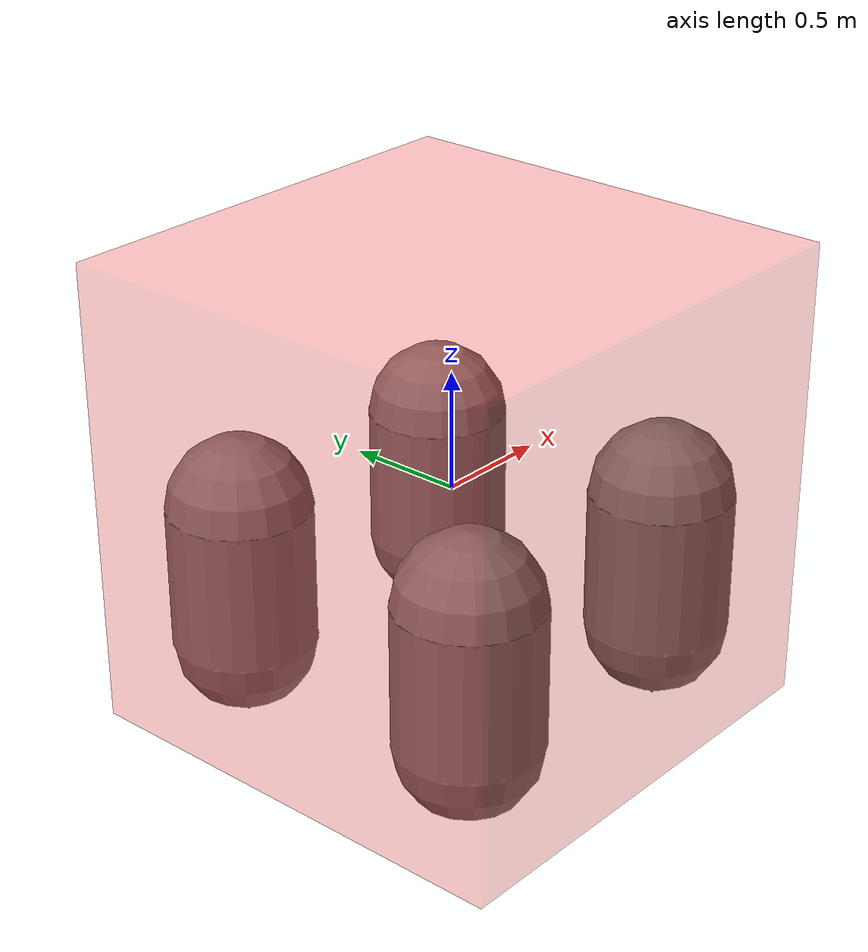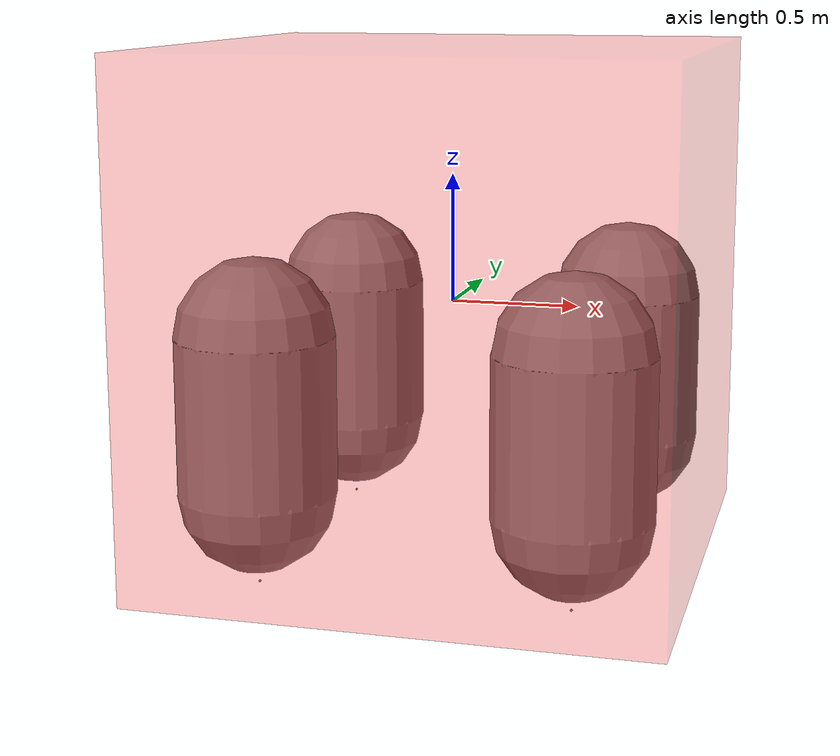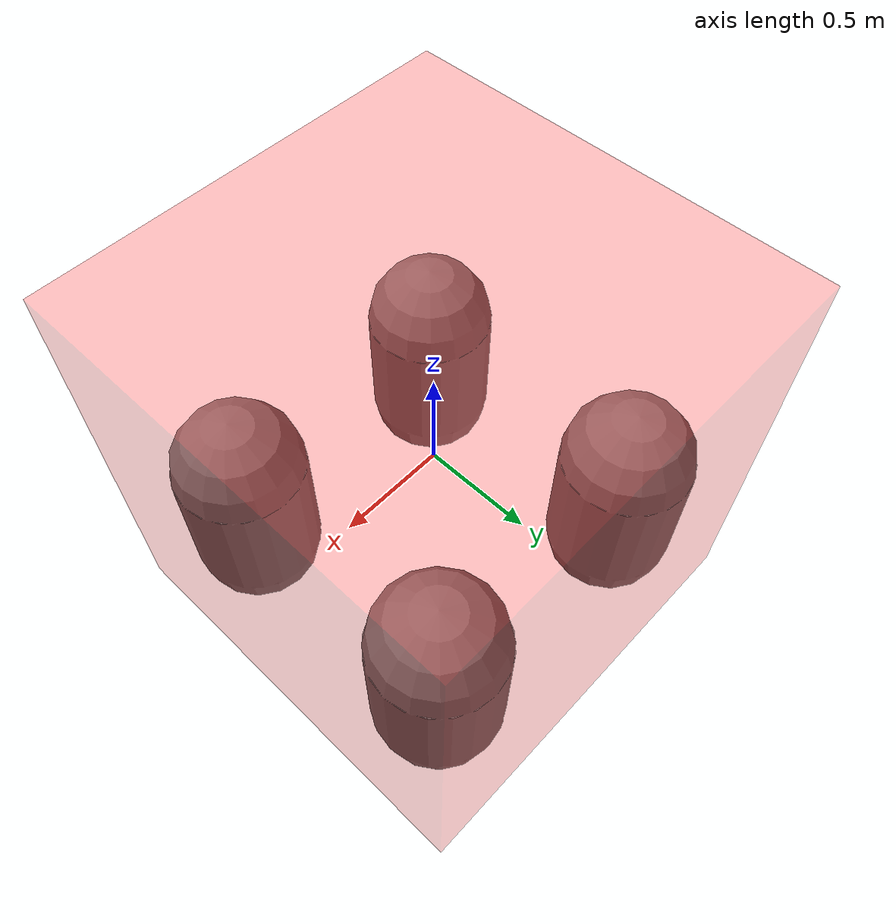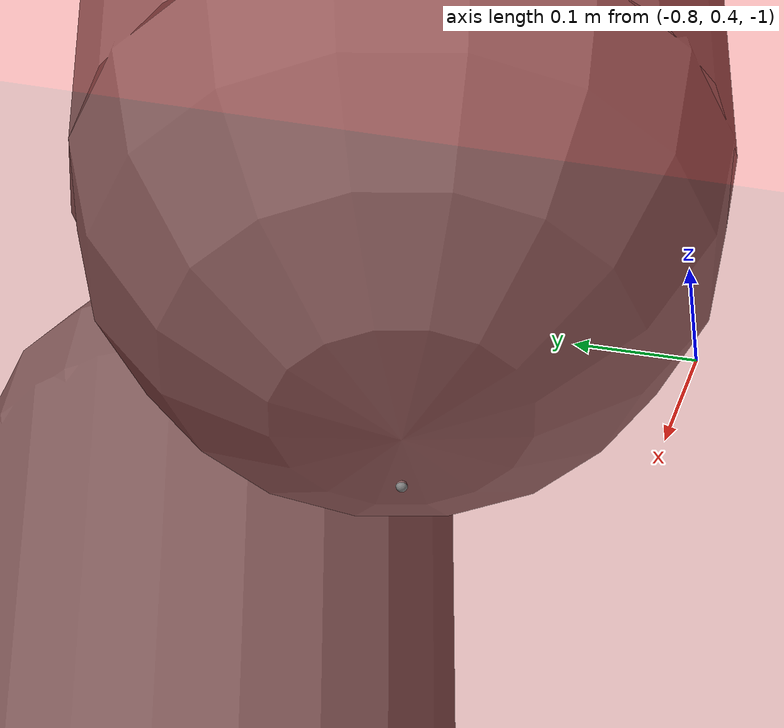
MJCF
<mujoco>
	<option gravity="0 0 0"/>

	<default class="main">
		<default class="thruster_tank">
			<geom type="capsule" size="0.3 0.3" density="2000"/>
		</default>
    </default>

	<worldbody>
		<body name="hub">
			<freejoint/>
			<geom name="hub_box" type="box" size="1 1 1" rgba="1 0 0 0.25" density="200"/>

			<body name="tank_1" pos="0.6 0.6 -0.35" zaxis="0 0 -1">
				<geom name="tank_1" class="thruster_tank"/>
				<site name="tank_1_thrust_point" pos="0 0 0.65" />
			</body>

			<body name="tank_2" pos="-0.6 0.6 -0.35" zaxis="0 0 -1">
				<geom name="tank_2" class="thruster_tank"/>
				<site name="tank_2_thrust_point" pos="0 0 0.65" />
			</body>

			<body name="tank_3" pos="0.6 -0.6 -0.35" zaxis="0 0 -1">
				<geom name="tank_3" class="thruster_tank"/>
				<site name="tank_3_thrust_point" pos="0 0 0.65" />
			</body>

			<body name="tank_4" pos="-0.6 -0.6 -0.35" zaxis="0 0 -1">
				<geom name="tank_4" class="thruster_tank"/>
				<site name="tank_4_thrust_point" pos="0 0 0.65" />
			</body>
		</body>

	</worldbody>

	<actuator>
		<motor name="tank_1_thrust" site="tank_1_thrust_point" gear="0 0 -1 0 0 0" />
		<motor name="tank_2_thrust" site="tank_2_thrust_point" gear="0 0 -1 0 0 0" />
		<motor name="tank_3_thrust" site="tank_3_thrust_point" gear="0 0 -1 0 0 0" />
		<motor name="tank_4_thrust" site="tank_4_thrust_point" gear="0 0 -1 0 0 0" />
	</actuator>

</mujoco>
